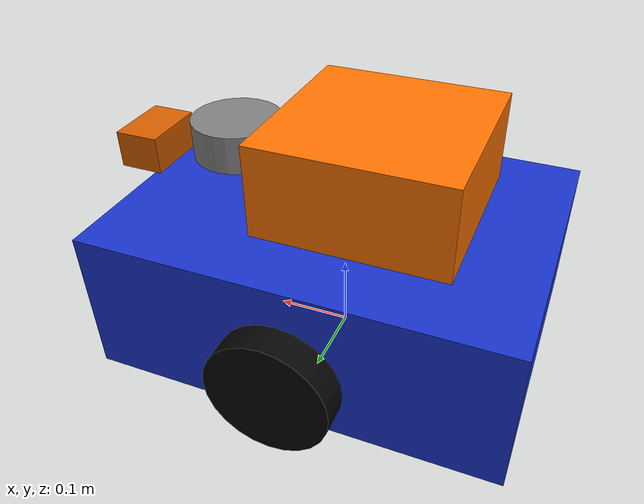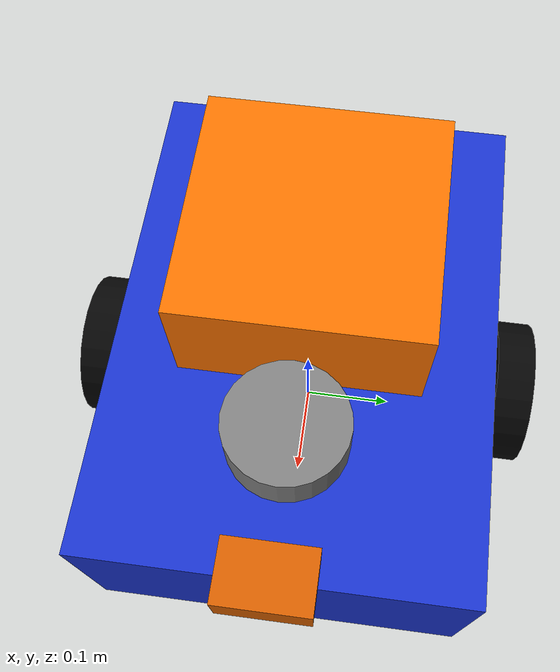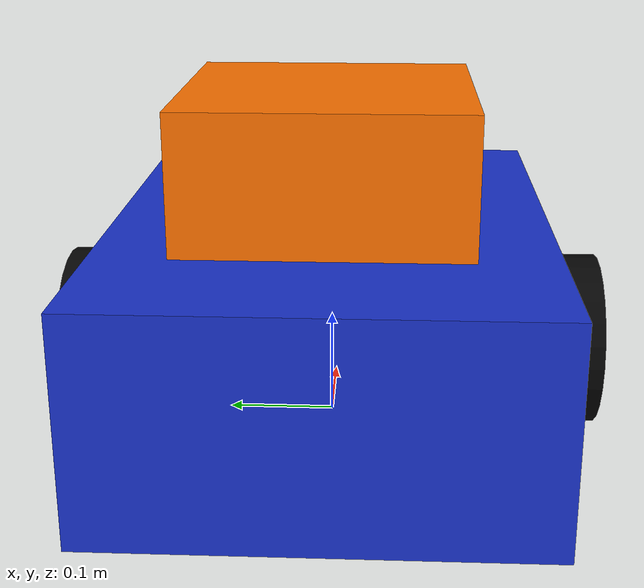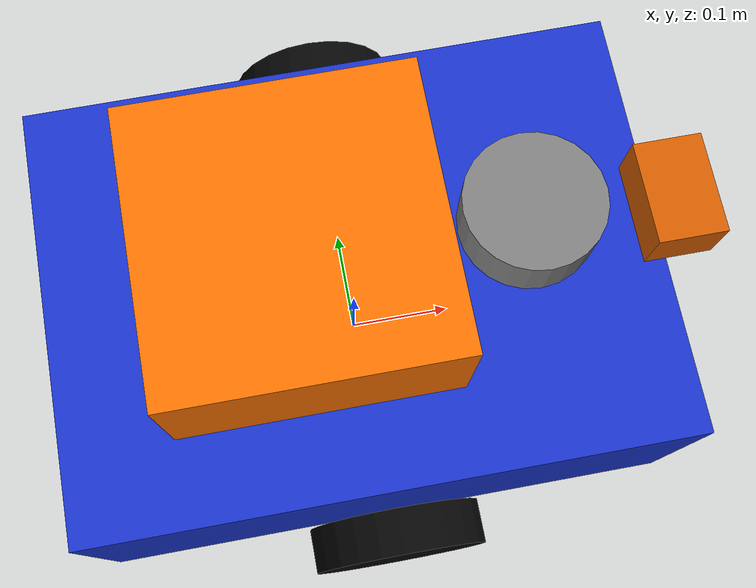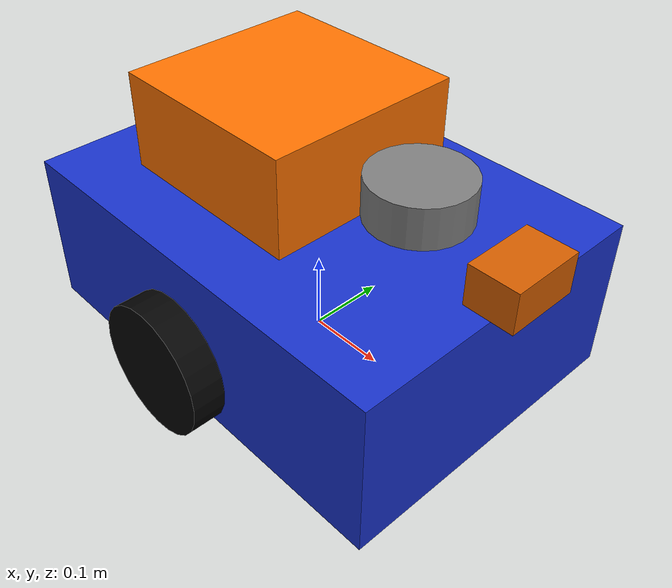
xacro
<?xml version="1.0"?>
<robot name="delivery_bot" xmlns:xacro="http://www.ros.org/wiki/xacro">

  <xacro:property name="base_length" value="0.55"/>
  <xacro:property name="base_width" value="0.40"/>
  <xacro:property name="base_height" value="0.20"/>
  <xacro:property name="wheel_radius" value="0.08"/>
  <xacro:property name="wheel_width" value="0.04"/>

  <link name="base_link">
    <visual>
      <origin xyz="0 0 0.10"/>
      <geometry>
        <box size="${base_length} ${base_width} ${base_height}"/>
      </geometry>
      <material name="blue">
        <color rgba="0.1 0.2 0.8 1.0"/>
      </material>
    </visual>

    <collision>
      <origin xyz="0 0 0.10"/>
      <geometry>
        <box size="${base_length} ${base_width} ${base_height}"/>
      </geometry>
    </collision>

    <inertial>
      <origin xyz="0 0 0.10"/>
      <mass value="10.0"/>
      <inertia ixx="0.25" ixy="0" ixz="0"
               iyy="0.25" iyz="0"
               izz="0.25"/>
    </inertial>
  </link>

  <link name="left_wheel">
    <visual>
      <geometry>
        <cylinder radius="${wheel_radius}" length="${wheel_width}"/>
      </geometry>
      <material name="black">
        <color rgba="0.02 0.02 0.02 1.0"/>
      </material>
    </visual>

    <collision>
      <geometry>
        <cylinder radius="${wheel_radius}" length="${wheel_width}"/>
      </geometry>
    </collision>

    <inertial>
      <mass value="0.5"/>
      <inertia ixx="0.001" ixy="0" ixz="0"
               iyy="0.001" iyz="0"
               izz="0.001"/>
    </inertial>
  </link>

  <joint name="left_wheel_joint" type="continuous">
    <parent link="base_link"/>
    <child link="left_wheel"/>
    <origin xyz="0 0.23 0.08" rpy="1.5708 0 0"/>
    <axis xyz="0 0 1"/>
  </joint>

  <link name="right_wheel">
    <visual>
      <geometry>
        <cylinder radius="${wheel_radius}" length="${wheel_width}"/>
      </geometry>
      <material name="black"/>
    </visual>

    <collision>
      <geometry>
        <cylinder radius="${wheel_radius}" length="${wheel_width}"/>
      </geometry>
    </collision>

    <inertial>
      <mass value="0.5"/>
      <inertia ixx="0.001" ixy="0" ixz="0"
               iyy="0.001" iyz="0"
               izz="0.001"/>
    </inertial>
  </link>

  <joint name="right_wheel_joint" type="continuous">
    <parent link="base_link"/>
    <child link="right_wheel"/>
    <origin xyz="0 -0.23 0.08" rpy="1.5708 0 0"/>
    <axis xyz="0 0 1"/>
  </joint>

  <link name="caster_wheel">
    <visual>
      <geometry>
        <sphere radius="0.04"/>
      </geometry>
    </visual>

    <collision>
      <geometry>
        <sphere radius="0.04"/>
      </geometry>
    </collision>

    <inertial>
      <mass value="0.2"/>
      <inertia ixx="0.0002" ixy="0" ixz="0"
               iyy="0.0002" iyz="0"
               izz="0.0002"/>
    </inertial>
  </link>

  <joint name="caster_joint" type="fixed">
    <parent link="base_link"/>
    <child link="caster_wheel"/>
    <origin xyz="-0.20 0 0.04"/>
  </joint>

  <link name="lidar_link">
    <visual>
      <geometry>
        <cylinder radius="0.06" length="0.05"/>
      </geometry>
      <material name="gray">
        <color rgba="0.5 0.5 0.5 1"/>
      </material>
    </visual>
  </link>

  <joint name="lidar_joint" type="fixed">
    <parent link="base_link"/>
    <child link="lidar_link"/>
    <origin xyz="0.15 0 0.27"/>
  </joint>

  <link name="camera_link">
    <visual>
      <geometry>
        <box size="0.06 0.09 0.05"/>
      </geometry>
    </visual>
  </link>

  <joint name="camera_joint" type="fixed">
    <parent link="base_link"/>
    <child link="camera_link"/>
    <origin xyz="0.28 0 0.24"/>
  </joint>

  <link name="delivery_box">
    <visual>
      <origin xyz="-0.05 0 0.27"/>
      <geometry>
        <box size="0.25 0.25 0.12"/>
      </geometry>
      <material name="orange">
        <color rgba="1.0 0.45 0.0 1.0"/>
      </material>
    </visual>
  </link>

  <joint name="delivery_box_joint" type="fixed">
    <parent link="base_link"/>
    <child link="delivery_box"/>
    <origin xyz="0 0 0"/>
  </joint>

  <gazebo>
    <plugin
      filename="gz-sim-diff-drive-system"
      name="gz::sim::systems::DiffDrive">
      <left_joint>left_wheel_joint</left_joint>
      <right_joint>right_wheel_joint</right_joint>
      <wheel_separation>0.46</wheel_separation>
      <wheel_radius>${wheel_radius}</wheel_radius>
      <topic>/cmd_vel_safe</topic>
      <odom_topic>/odom</odom_topic>
      <tf_topic>/tf</tf_topic>
      <frame_id>odom</frame_id>
      <child_frame_id>base_link</child_frame_id>
      <odom_publish_frequency>30</odom_publish_frequency>
    </plugin>
  </gazebo>

  <gazebo reference="lidar_link">
    <sensor name="lidar" type="gpu_lidar">
      <topic>/scan</topic>
      <gz_frame_id>lidar_link</gz_frame_id>
      <update_rate>10</update_rate>
      <ray>
        <scan>
          <horizontal>
            <samples>360</samples>
            <resolution>1</resolution>
            <min_angle>-3.14159</min_angle>
            <max_angle>3.14159</max_angle>
          </horizontal>
        </scan>
        <range>
          <min>0.08</min>
          <max>8.0</max>
          <resolution>0.01</resolution>
        </range>
      </ray>
      <always_on>true</always_on>
      <visualize>true</visualize>
    </sensor>
  </gazebo>

</robot>
